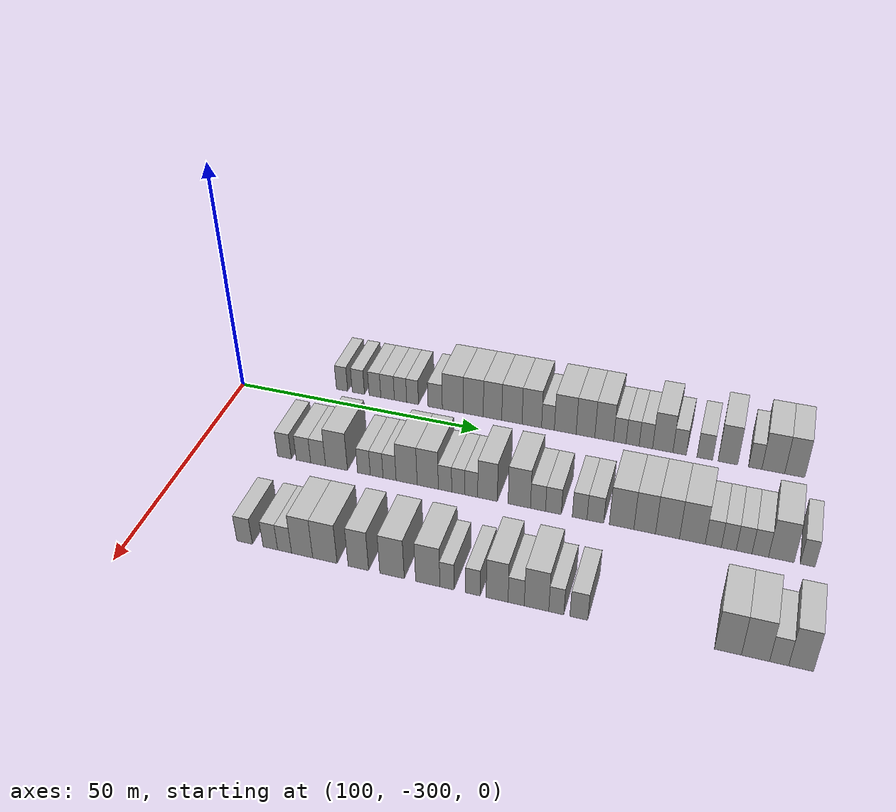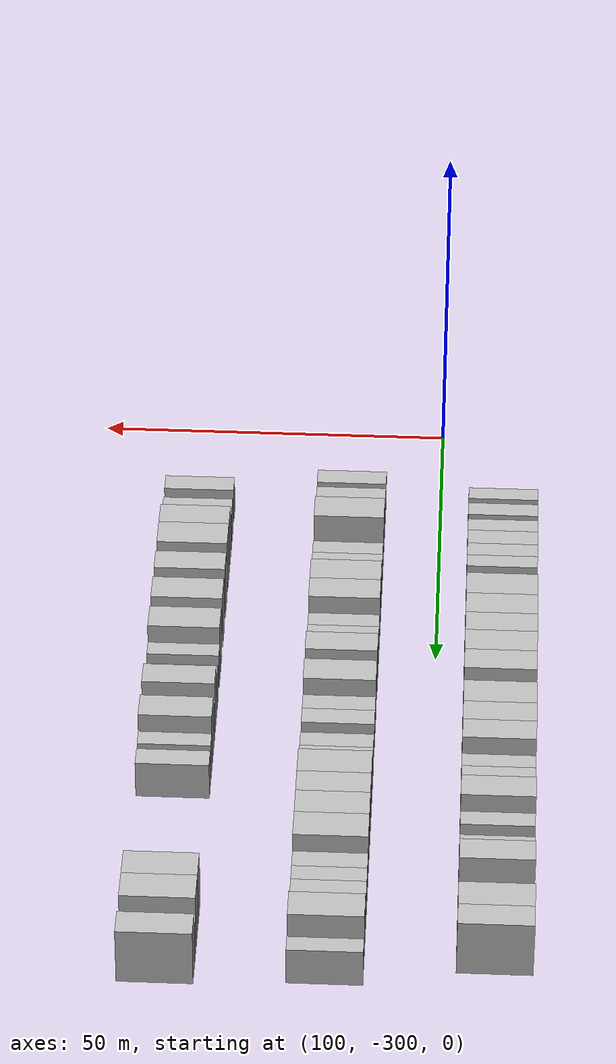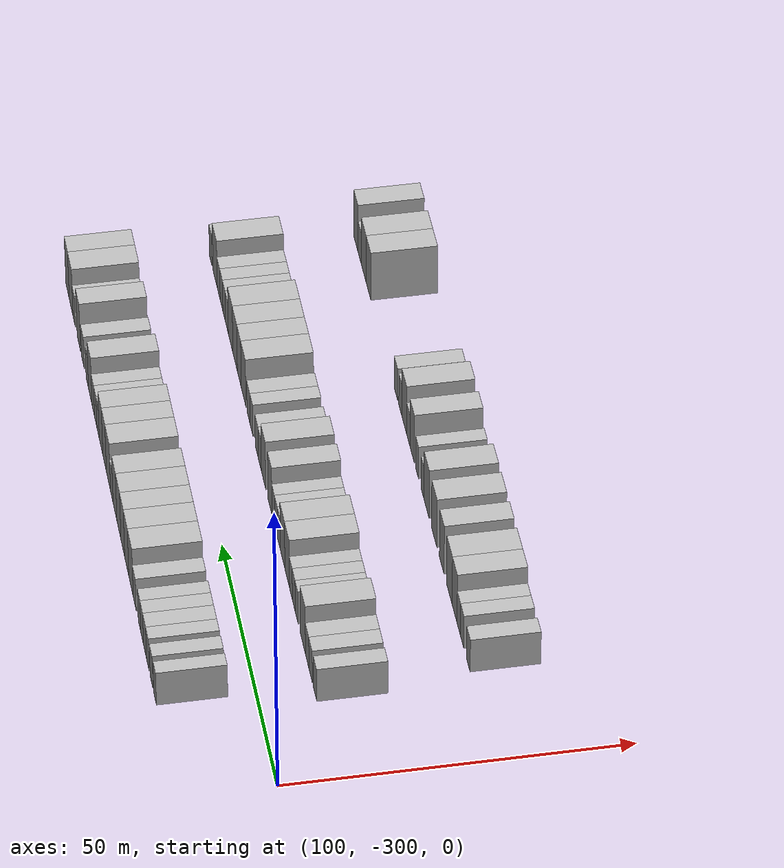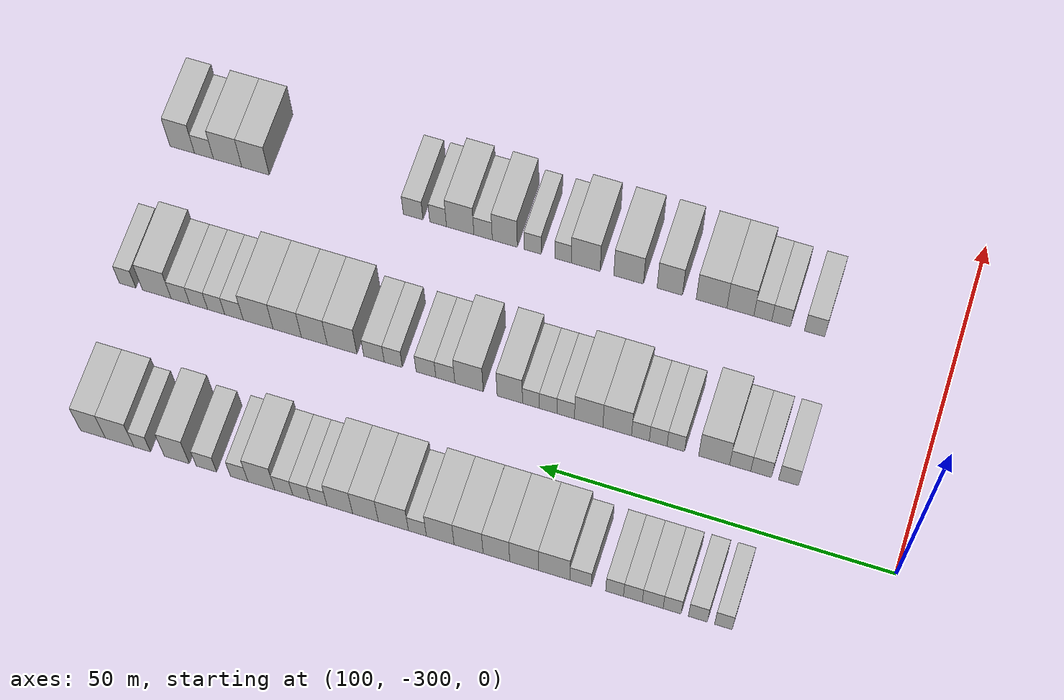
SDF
<sdf version="1.6">
 <world name="default">
  <model name="building_607">
   <static>1</static>
   <pose>91.0000 -279.9503 0 0.000000 0.000000 0.000000</pose>
   <link name="link">
    <pose>0 0 3.00 0 0 0</pose>
    <collision name="collision"><geometry><box><size>10.0000 2.4449 6.0000</size></box></geometry></collision>
    <visual name="visual">
     <cast_shadows>0</cast_shadows>
     <geometry><box><size>10.0000 2.4449 6.0000</size></box></geometry>
     <material>
      <script>
       <uri>model://HANNAS_wall/materials/scripts</uri>
       <uri>model://HANNAS_wall/materials/textures</uri>
       <name>vrc/HANNAS_wall</name>
      </script>
     </material>
    </visual>
   </link>
  </model>
  <model name="building_608">
   <static>1</static>
   <pose>91.0000 -276.4131 0 0.000000 0.000000 0.000000</pose>
   <link name="link">
    <pose>0 0 3.00 0 0 0</pose>
    <collision name="collision"><geometry><box><size>10.0000 2.6295 6.0000</size></box></geometry></collision>
    <visual name="visual">
     <cast_shadows>0</cast_shadows>
     <geometry><box><size>10.0000 2.6295 6.0000</size></box></geometry>
     <material>
      <script>
       <uri>model://HANNAS_wall/materials/scripts</uri>
       <uri>model://HANNAS_wall/materials/textures</uri>
       <name>vrc/HANNAS_wall</name>
      </script>
     </material>
    </visual>
   </link>
  </model>
  <model name="building_609">
   <static>1</static>
   <pose>91.0000 -272.8464 0 0.000000 0.000000 0.000000</pose>
   <link name="link">
    <pose>0 0 3.00 0 0 0</pose>
    <collision name="collision"><geometry><box><size>10.0000 2.5037 6.0000</size></box></geometry></collision>
    <visual name="visual">
     <cast_shadows>0</cast_shadows>
     <geometry><box><size>10.0000 2.5037 6.0000</size></box></geometry>
     <material>
      <script>
       <uri>model://HANNAS_wall/materials/scripts</uri>
       <uri>model://HANNAS_wall/materials/textures</uri>
       <name>vrc/HANNAS_wall</name>
      </script>
     </material>
    </visual>
   </link>
  </model>
  <model name="building_610">
   <static>1</static>
   <pose>91.0000 -270.1449 0 0.000000 0.000000 0.000000</pose>
   <link name="link">
    <pose>0 0 3.00 0 0 0</pose>
    <collision name="collision"><geometry><box><size>10.0000 2.8994 6.0000</size></box></geometry></collision>
    <visual name="visual">
     <cast_shadows>0</cast_shadows>
     <geometry><box><size>10.0000 2.8994 6.0000</size></box></geometry>
     <material>
      <script>
       <uri>model://HANNAS_wall/materials/scripts</uri>
       <uri>model://HANNAS_wall/materials/textures</uri>
       <name>vrc/HANNAS_wall</name>
      </script>
     </material>
    </visual>
   </link>
  </model>
  <model name="building_611">
   <static>1</static>
   <pose>91.0000 -267.3879 0 0.000000 0.000000 0.000000</pose>
   <link name="link">
    <pose>0 0 3.00 0 0 0</pose>
    <collision name="collision"><geometry><box><size>10.0000 2.6146 6.0000</size></box></geometry></collision>
    <visual name="visual">
     <cast_shadows>0</cast_shadows>
     <geometry><box><size>10.0000 2.6146 6.0000</size></box></geometry>
     <material>
      <script>
       <uri>model://HANNAS_wall/materials/scripts</uri>
       <uri>model://HANNAS_wall/materials/textures</uri>
       <name>vrc/HANNAS_wall</name>
      </script>
     </material>
    </visual>
   </link>
  </model>
  <model name="building_612">
   <static>1</static>
   <pose>91.0000 -264.8362 0 0.000000 0.000000 0.000000</pose>
   <link name="link">
    <pose>0 0 3.00 0 0 0</pose>
    <collision name="collision"><geometry><box><size>10.0000 2.4888 6.0000</size></box></geometry></collision>
    <visual name="visual">
     <cast_shadows>0</cast_shadows>
     <geometry><box><size>10.0000 2.4888 6.0000</size></box></geometry>
     <material>
      <script>
       <uri>model://HANNAS_wall/materials/scripts</uri>
       <uri>model://HANNAS_wall/materials/textures</uri>
       <name>vrc/HANNAS_wall</name>
      </script>
     </material>
    </visual>
   </link>
  </model>
  <model name="building_613">
   <static>1</static>
   <pose>91.0000 -260.0972 0 0.000000 0.000000 0.000000</pose>
   <link name="link">
    <pose>0 0 3.00 0 0 0</pose>
    <collision name="collision"><geometry><box><size>10.0000 2.9893 6.0000</size></box></geometry></collision>
    <visual name="visual">
     <cast_shadows>0</cast_shadows>
     <geometry><box><size>10.0000 2.9893 6.0000</size></box></geometry>
     <material>
      <script>
       <uri>model://HANNAS_wall/materials/scripts</uri>
       <uri>model://HANNAS_wall/materials/textures</uri>
       <name>vrc/HANNAS_wall</name>
      </script>
     </material>
    </visual>
   </link>
  </model>
  <model name="building_614">
   <static>1</static>
   <pose>91.0000 -256.4033 0 0.000000 0.000000 0.000000</pose>
   <link name="link">
    <pose>0 0 4.50 0 0 0</pose>
    <collision name="collision"><geometry><box><size>10.0000 4.3985 9.0000</size></box></geometry></collision>
    <visual name="visual">
     <cast_shadows>0</cast_shadows>
     <geometry><box><size>10.0000 4.3985 9.0000</size></box></geometry>
     <material>
      <script>
       <uri>model://HANNAS_wall/materials/scripts</uri>
       <uri>model://HANNAS_wall/materials/textures</uri>
       <name>vrc/HANNAS_wall</name>
      </script>
     </material>
    </visual>
   </link>
  </model>
  <model name="building_615">
   <static>1</static>
   <pose>91.0000 -252.1648 0 0.000000 0.000000 0.000000</pose>
   <link name="link">
    <pose>0 0 4.50 0 0 0</pose>
    <collision name="collision"><geometry><box><size>10.0000 4.0785 9.0000</size></box></geometry></collision>
    <visual name="visual">
     <cast_shadows>0</cast_shadows>
     <geometry><box><size>10.0000 4.0785 9.0000</size></box></geometry>
     <material>
      <script>
       <uri>model://HANNAS_wall/materials/scripts</uri>
       <uri>model://HANNAS_wall/materials/textures</uri>
       <name>vrc/HANNAS_wall</name>
      </script>
     </material>
    </visual>
   </link>
  </model>
  <model name="building_616">
   <static>1</static>
   <pose>91.0000 -248.2502 0 0.000000 0.000000 0.000000</pose>
   <link name="link">
    <pose>0 0 4.50 0 0 0</pose>
    <collision name="collision"><geometry><box><size>10.0000 3.7507 9.0000</size></box></geometry></collision>
    <visual name="visual">
     <cast_shadows>0</cast_shadows>
     <geometry><box><size>10.0000 3.7507 9.0000</size></box></geometry>
     <material>
      <script>
       <uri>model://HANNAS_wall/materials/scripts</uri>
       <uri>model://HANNAS_wall/materials/textures</uri>
       <name>vrc/HANNAS_wall</name>
      </script>
     </material>
    </visual>
   </link>
  </model>
  <model name="building_617">
   <static>1</static>
   <pose>91.0000 -244.3255 0 0.000000 0.000000 0.000000</pose>
   <link name="link">
    <pose>0 0 4.50 0 0 0</pose>
    <collision name="collision"><geometry><box><size>10.0000 4.0986 9.0000</size></box></geometry></collision>
    <visual name="visual">
     <cast_shadows>0</cast_shadows>
     <geometry><box><size>10.0000 4.0986 9.0000</size></box></geometry>
     <material>
      <script>
       <uri>model://HANNAS_wall/materials/scripts</uri>
       <uri>model://HANNAS_wall/materials/textures</uri>
       <name>vrc/HANNAS_wall</name>
      </script>
     </material>
    </visual>
   </link>
  </model>
  <model name="building_618">
   <static>1</static>
   <pose>91.0000 -240.3170 0 0.000000 0.000000 0.000000</pose>
   <link name="link">
    <pose>0 0 4.50 0 0 0</pose>
    <collision name="collision"><geometry><box><size>10.0000 3.9185 9.0000</size></box></geometry></collision>
    <visual name="visual">
     <cast_shadows>0</cast_shadows>
     <geometry><box><size>10.0000 3.9185 9.0000</size></box></geometry>
     <material>
      <script>
       <uri>model://HANNAS_wall/materials/scripts</uri>
       <uri>model://HANNAS_wall/materials/textures</uri>
       <name>vrc/HANNAS_wall</name>
      </script>
     </material>
    </visual>
   </link>
  </model>
  <model name="building_619">
   <static>1</static>
   <pose>91.0000 -237.0814 0 0.000000 0.000000 0.000000</pose>
   <link name="link">
    <pose>0 0 3.00 0 0 0</pose>
    <collision name="collision"><geometry><box><size>10.0000 2.5527 6.0000</size></box></geometry></collision>
    <visual name="visual">
     <cast_shadows>0</cast_shadows>
     <geometry><box><size>10.0000 2.5527 6.0000</size></box></geometry>
     <material>
      <script>
       <uri>model://HANNAS_wall/materials/scripts</uri>
       <uri>model://HANNAS_wall/materials/textures</uri>
       <name>vrc/HANNAS_wall</name>
      </script>
     </material>
    </visual>
   </link>
  </model>
  <model name="building_620">
   <static>1</static>
   <pose>91.0000 -233.6592 0 0.000000 0.000000 0.000000</pose>
   <link name="link">
    <pose>0 0 4.50 0 0 0</pose>
    <collision name="collision"><geometry><box><size>10.0000 4.2918 9.0000</size></box></geometry></collision>
    <visual name="visual">
     <cast_shadows>0</cast_shadows>
     <geometry><box><size>10.0000 4.2918 9.0000</size></box></geometry>
     <material>
      <script>
       <uri>model://HANNAS_wall/materials/scripts</uri>
       <uri>model://HANNAS_wall/materials/textures</uri>
       <name>vrc/HANNAS_wall</name>
      </script>
     </material>
    </visual>
   </link>
  </model>
  <model name="building_621">
   <static>1</static>
   <pose>91.0000 -229.6779 0 0.000000 0.000000 0.000000</pose>
   <link name="link">
    <pose>0 0 4.50 0 0 0</pose>
    <collision name="collision"><geometry><box><size>10.0000 3.6708 9.0000</size></box></geometry></collision>
    <visual name="visual">
     <cast_shadows>0</cast_shadows>
     <geometry><box><size>10.0000 3.6708 9.0000</size></box></geometry>
     <material>
      <script>
       <uri>model://HANNAS_wall/materials/scripts</uri>
       <uri>model://HANNAS_wall/materials/textures</uri>
       <name>vrc/HANNAS_wall</name>
      </script>
     </material>
    </visual>
   </link>
  </model>
  <model name="building_622">
   <static>1</static>
   <pose>91.0000 -226.0077 0 0.000000 0.000000 0.000000</pose>
   <link name="link">
    <pose>0 0 4.50 0 0 0</pose>
    <collision name="collision"><geometry><box><size>10.0000 3.6696 9.0000</size></box></geometry></collision>
    <visual name="visual">
     <cast_shadows>0</cast_shadows>
     <geometry><box><size>10.0000 3.6696 9.0000</size></box></geometry>
     <material>
      <script>
       <uri>model://HANNAS_wall/materials/scripts</uri>
       <uri>model://HANNAS_wall/materials/textures</uri>
       <name>vrc/HANNAS_wall</name>
      </script>
     </material>
    </visual>
   </link>
  </model>
  <model name="building_623">
   <static>1</static>
   <pose>91.0000 -222.9722 0 0.000000 0.000000 0.000000</pose>
   <link name="link">
    <pose>0 0 3.00 0 0 0</pose>
    <collision name="collision"><geometry><box><size>10.0000 2.4015 6.0000</size></box></geometry></collision>
    <visual name="visual">
     <cast_shadows>0</cast_shadows>
     <geometry><box><size>10.0000 2.4015 6.0000</size></box></geometry>
     <material>
      <script>
       <uri>model://HANNAS_wall/materials/scripts</uri>
       <uri>model://HANNAS_wall/materials/textures</uri>
       <name>vrc/HANNAS_wall</name>
      </script>
     </material>
    </visual>
   </link>
  </model>
  <model name="building_624">
   <static>1</static>
   <pose>91.0000 -220.5133 0 0.000000 0.000000 0.000000</pose>
   <link name="link">
    <pose>0 0 3.00 0 0 0</pose>
    <collision name="collision"><geometry><box><size>10.0000 2.5162 6.0000</size></box></geometry></collision>
    <visual name="visual">
     <cast_shadows>0</cast_shadows>
     <geometry><box><size>10.0000 2.5162 6.0000</size></box></geometry>
     <material>
      <script>
       <uri>model://HANNAS_wall/materials/scripts</uri>
       <uri>model://HANNAS_wall/materials/textures</uri>
       <name>vrc/HANNAS_wall</name>
      </script>
     </material>
    </visual>
   </link>
  </model>
  <model name="building_625">
   <static>1</static>
   <pose>91.0000 -217.9623 0 0.000000 0.000000 0.000000</pose>
   <link name="link">
    <pose>0 0 3.00 0 0 0</pose>
    <collision name="collision"><geometry><box><size>10.0000 2.5860 6.0000</size></box></geometry></collision>
    <visual name="visual">
     <cast_shadows>0</cast_shadows>
     <geometry><box><size>10.0000 2.5860 6.0000</size></box></geometry>
     <material>
      <script>
       <uri>model://HANNAS_wall/materials/scripts</uri>
       <uri>model://HANNAS_wall/materials/textures</uri>
       <name>vrc/HANNAS_wall</name>
      </script>
     </material>
    </visual>
   </link>
  </model>
  <model name="building_626">
   <static>1</static>
   <pose>91.0000 -214.7382 0 0.000000 0.000000 0.000000</pose>
   <link name="link">
    <pose>0 0 4.50 0 0 0</pose>
    <collision name="collision"><geometry><box><size>10.0000 3.8621 9.0000</size></box></geometry></collision>
    <visual name="visual">
     <cast_shadows>0</cast_shadows>
     <geometry><box><size>10.0000 3.8621 9.0000</size></box></geometry>
     <material>
      <script>
       <uri>model://HANNAS_wall/materials/scripts</uri>
       <uri>model://HANNAS_wall/materials/textures</uri>
       <name>vrc/HANNAS_wall</name>
      </script>
     </material>
    </visual>
   </link>
  </model>
  <model name="building_627">
   <static>1</static>
   <pose>91.0000 -211.5378 0 0.000000 0.000000 0.000000</pose>
   <link name="link">
    <pose>0 0 3.00 0 0 0</pose>
    <collision name="collision"><geometry><box><size>10.0000 2.5387 6.0000</size></box></geometry></collision>
    <visual name="visual">
     <cast_shadows>0</cast_shadows>
     <geometry><box><size>10.0000 2.5387 6.0000</size></box></geometry>
     <material>
      <script>
       <uri>model://HANNAS_wall/materials/scripts</uri>
       <uri>model://HANNAS_wall/materials/textures</uri>
       <name>vrc/HANNAS_wall</name>
      </script>
     </material>
    </visual>
   </link>
  </model>
  <model name="building_628">
   <static>1</static>
   <pose>91.0000 -206.7907 0 0.000000 0.000000 0.000000</pose>
   <link name="link">
    <pose>0 0 3.00 0 0 0</pose>
    <collision name="collision"><geometry><box><size>10.0000 2.9554 6.0000</size></box></geometry></collision>
    <visual name="visual">
     <cast_shadows>0</cast_shadows>
     <geometry><box><size>10.0000 2.9554 6.0000</size></box></geometry>
     <material>
      <script>
       <uri>model://HANNAS_wall/materials/scripts</uri>
       <uri>model://HANNAS_wall/materials/textures</uri>
       <name>vrc/HANNAS_wall</name>
      </script>
     </material>
    </visual>
   </link>
  </model>
  <model name="building_629">
   <static>1</static>
   <pose>91.0000 -202.4973 0 0.000000 0.000000 0.000000</pose>
   <link name="link">
    <pose>0 0 4.50 0 0 0</pose>
    <collision name="collision"><geometry><box><size>10.0000 3.6314 9.0000</size></box></geometry></collision>
    <visual name="visual">
     <cast_shadows>0</cast_shadows>
     <geometry><box><size>10.0000 3.6314 9.0000</size></box></geometry>
     <material>
      <script>
       <uri>model://HANNAS_wall/materials/scripts</uri>
       <uri>model://HANNAS_wall/materials/textures</uri>
       <name>vrc/HANNAS_wall</name>
      </script>
     </material>
    </visual>
   </link>
  </model>
  <model name="building_630">
   <static>1</static>
   <pose>91.0000 -197.4672 0 0.000000 0.000000 0.000000</pose>
   <link name="link">
    <pose>0 0 3.00 0 0 0</pose>
    <collision name="collision"><geometry><box><size>10.0000 2.4287 6.0000</size></box></geometry></collision>
    <visual name="visual">
     <cast_shadows>0</cast_shadows>
     <geometry><box><size>10.0000 2.4287 6.0000</size></box></geometry>
     <material>
      <script>
       <uri>model://HANNAS_wall/materials/scripts</uri>
       <uri>model://HANNAS_wall/materials/textures</uri>
       <name>vrc/HANNAS_wall</name>
      </script>
     </material>
    </visual>
   </link>
  </model>
  <model name="building_631">
   <static>1</static>
   <pose>91.0000 -194.1700 0 0.000000 0.000000 0.000000</pose>
   <link name="link">
    <pose>0 0 4.50 0 0 0</pose>
    <collision name="collision"><geometry><box><size>10.0000 4.1658 9.0000</size></box></geometry></collision>
    <visual name="visual">
     <cast_shadows>0</cast_shadows>
     <geometry><box><size>10.0000 4.1658 9.0000</size></box></geometry>
     <material>
      <script>
       <uri>model://HANNAS_wall/materials/scripts</uri>
       <uri>model://HANNAS_wall/materials/textures</uri>
       <name>vrc/HANNAS_wall</name>
      </script>
     </material>
    </visual>
   </link>
  </model>
  <model name="building_632">
   <static>1</static>
   <pose>91.0000 -190.2666 0 0.000000 0.000000 0.000000</pose>
   <link name="link">
    <pose>0 0 4.50 0 0 0</pose>
    <collision name="collision"><geometry><box><size>10.0000 3.6411 9.0000</size></box></geometry></collision>
    <visual name="visual">
     <cast_shadows>0</cast_shadows>
     <geometry><box><size>10.0000 3.6411 9.0000</size></box></geometry>
     <material>
      <script>
       <uri>model://HANNAS_wall/materials/scripts</uri>
       <uri>model://HANNAS_wall/materials/textures</uri>
       <name>vrc/HANNAS_wall</name>
      </script>
     </material>
    </visual>
   </link>
  </model>
  <model name="building_811">
   <static>1</static>
   <pose>113.0000 -282.7919 0 0.000000 0.000000 0.000000</pose>
   <link name="link">
    <pose>0 0 3.00 0 0 0</pose>
    <collision name="collision"><geometry><box><size>10.0000 2.8176 6.0000</size></box></geometry></collision>
    <visual name="visual">
     <cast_shadows>0</cast_shadows>
     <geometry><box><size>10.0000 2.8176 6.0000</size></box></geometry>
     <material>
      <script>
       <uri>model://HANNAS_wall/materials/scripts</uri>
       <uri>model://HANNAS_wall/materials/textures</uri>
       <name>vrc/HANNAS_wall</name>
      </script>
     </material>
    </visual>
   </link>
  </model>
  <model name="building_812">
   <static>1</static>
   <pose>113.0000 -278.9204 0 0.000000 0.000000 0.000000</pose>
   <link name="link">
    <pose>0 0 3.00 0 0 0</pose>
    <collision name="collision"><geometry><box><size>10.0000 2.9254 6.0000</size></box></geometry></collision>
    <visual name="visual">
     <cast_shadows>0</cast_shadows>
     <geometry><box><size>10.0000 2.9254 6.0000</size></box></geometry>
     <material>
      <script>
       <uri>model://HANNAS_wall/materials/scripts</uri>
       <uri>model://HANNAS_wall/materials/textures</uri>
       <name>vrc/HANNAS_wall</name>
      </script>
     </material>
    </visual>
   </link>
  </model>
  <model name="building_813">
   <static>1</static>
   <pose>113.0000 -275.9666 0 0.000000 0.000000 0.000000</pose>
   <link name="link">
    <pose>0 0 3.00 0 0 0</pose>
    <collision name="collision"><geometry><box><size>10.0000 2.9822 6.0000</size></box></geometry></collision>
    <visual name="visual">
     <cast_shadows>0</cast_shadows>
     <geometry><box><size>10.0000 2.9822 6.0000</size></box></geometry>
     <material>
      <script>
       <uri>model://HANNAS_wall/materials/scripts</uri>
       <uri>model://HANNAS_wall/materials/textures</uri>
       <name>vrc/HANNAS_wall</name>
      </script>
     </material>
    </visual>
   </link>
  </model>
  <model name="building_814">
   <static>1</static>
   <pose>113.0000 -272.2778 0 0.000000 0.000000 0.000000</pose>
   <link name="link">
    <pose>0 0 4.50 0 0 0</pose>
    <collision name="collision"><geometry><box><size>10.0000 4.3955 9.0000</size></box></geometry></collision>
    <visual name="visual">
     <cast_shadows>0</cast_shadows>
     <geometry><box><size>10.0000 4.3955 9.0000</size></box></geometry>
     <material>
      <script>
       <uri>model://HANNAS_wall/materials/scripts</uri>
       <uri>model://HANNAS_wall/materials/textures</uri>
       <name>vrc/HANNAS_wall</name>
      </script>
     </material>
    </visual>
   </link>
  </model>
  <model name="building_815">
   <static>1</static>
   <pose>113.0000 -266.8245 0 0.000000 0.000000 0.000000</pose>
   <link name="link">
    <pose>0 0 3.00 0 0 0</pose>
    <collision name="collision"><geometry><box><size>10.0000 2.5110 6.0000</size></box></geometry></collision>
    <visual name="visual">
     <cast_shadows>0</cast_shadows>
     <geometry><box><size>10.0000 2.5110 6.0000</size></box></geometry>
     <material>
      <script>
       <uri>model://HANNAS_wall/materials/scripts</uri>
       <uri>model://HANNAS_wall/materials/textures</uri>
       <name>vrc/HANNAS_wall</name>
      </script>
     </material>
    </visual>
   </link>
  </model>
  <model name="building_816">
   <static>1</static>
   <pose>113.0000 -264.3159 0 0.000000 0.000000 0.000000</pose>
   <link name="link">
    <pose>0 0 3.00 0 0 0</pose>
    <collision name="collision"><geometry><box><size>10.0000 2.5062 6.0000</size></box></geometry></collision>
    <visual name="visual">
     <cast_shadows>0</cast_shadows>
     <geometry><box><size>10.0000 2.5062 6.0000</size></box></geometry>
     <material>
      <script>
       <uri>model://HANNAS_wall/materials/scripts</uri>
       <uri>model://HANNAS_wall/materials/textures</uri>
       <name>vrc/HANNAS_wall</name>
      </script>
     </material>
    </visual>
   </link>
  </model>
  <model name="building_817">
   <static>1</static>
   <pose>113.0000 -261.7914 0 0.000000 0.000000 0.000000</pose>
   <link name="link">
    <pose>0 0 3.00 0 0 0</pose>
    <collision name="collision"><geometry><box><size>10.0000 2.5427 6.0000</size></box></geometry></collision>
    <visual name="visual">
     <cast_shadows>0</cast_shadows>
     <geometry><box><size>10.0000 2.5427 6.0000</size></box></geometry>
     <material>
      <script>
       <uri>model://HANNAS_wall/materials/scripts</uri>
       <uri>model://HANNAS_wall/materials/textures</uri>
       <name>vrc/HANNAS_wall</name>
      </script>
     </material>
    </visual>
   </link>
  </model>
  <model name="building_818">
   <static>1</static>
   <pose>113.0000 -258.4742 0 0.000000 0.000000 0.000000</pose>
   <link name="link">
    <pose>0 0 4.50 0 0 0</pose>
    <collision name="collision"><geometry><box><size>10.0000 4.0918 9.0000</size></box></geometry></collision>
    <visual name="visual">
     <cast_shadows>0</cast_shadows>
     <geometry><box><size>10.0000 4.0918 9.0000</size></box></geometry>
     <material>
      <script>
       <uri>model://HANNAS_wall/materials/scripts</uri>
       <uri>model://HANNAS_wall/materials/textures</uri>
       <name>vrc/HANNAS_wall</name>
      </script>
     </material>
    </visual>
   </link>
  </model>
  <model name="building_819">
   <static>1</static>
   <pose>113.0000 -254.3950 0 0.000000 0.000000 0.000000</pose>
   <link name="link">
    <pose>0 0 4.50 0 0 0</pose>
    <collision name="collision"><geometry><box><size>10.0000 4.0666 9.0000</size></box></geometry></collision>
    <visual name="visual">
     <cast_shadows>0</cast_shadows>
     <geometry><box><size>10.0000 4.0666 9.0000</size></box></geometry>
     <material>
      <script>
       <uri>model://HANNAS_wall/materials/scripts</uri>
       <uri>model://HANNAS_wall/materials/textures</uri>
       <name>vrc/HANNAS_wall</name>
      </script>
     </material>
    </visual>
   </link>
  </model>
  <model name="building_820">
   <static>1</static>
   <pose>113.0000 -251.0864 0 0.000000 0.000000 0.000000</pose>
   <link name="link">
    <pose>0 0 3.00 0 0 0</pose>
    <collision name="collision"><geometry><box><size>10.0000 2.5504 6.0000</size></box></geometry></collision>
    <visual name="visual">
     <cast_shadows>0</cast_shadows>
     <geometry><box><size>10.0000 2.5504 6.0000</size></box></geometry>
     <material>
      <script>
       <uri>model://HANNAS_wall/materials/scripts</uri>
       <uri>model://HANNAS_wall/materials/textures</uri>
       <name>vrc/HANNAS_wall</name>
      </script>
     </material>
    </visual>
   </link>
  </model>
  <model name="building_821">
   <static>1</static>
   <pose>113.0000 -248.5660 0 0.000000 0.000000 0.000000</pose>
   <link name="link">
    <pose>0 0 3.00 0 0 0</pose>
    <collision name="collision"><geometry><box><size>10.0000 2.4904 6.0000</size></box></geometry></collision>
    <visual name="visual">
     <cast_shadows>0</cast_shadows>
     <geometry><box><size>10.0000 2.4904 6.0000</size></box></geometry>
     <material>
      <script>
       <uri>model://HANNAS_wall/materials/scripts</uri>
       <uri>model://HANNAS_wall/materials/textures</uri>
       <name>vrc/HANNAS_wall</name>
      </script>
     </material>
    </visual>
   </link>
  </model>
  <model name="building_822">
   <static>1</static>
   <pose>113.0000 -246.1030 0 0.000000 0.000000 0.000000</pose>
   <link name="link">
    <pose>0 0 3.00 0 0 0</pose>
    <collision name="collision"><geometry><box><size>10.0000 2.4356 6.0000</size></box></geometry></collision>
    <visual name="visual">
     <cast_shadows>0</cast_shadows>
     <geometry><box><size>10.0000 2.4356 6.0000</size></box></geometry>
     <material>
      <script>
       <uri>model://HANNAS_wall/materials/scripts</uri>
       <uri>model://HANNAS_wall/materials/textures</uri>
       <name>vrc/HANNAS_wall</name>
      </script>
     </material>
    </visual>
   </link>
  </model>
  <model name="building_823">
   <static>1</static>
   <pose>113.0000 -243.0482 0 0.000000 0.000000 0.000000</pose>
   <link name="link">
    <pose>0 0 4.50 0 0 0</pose>
    <collision name="collision"><geometry><box><size>10.0000 3.6739 9.0000</size></box></geometry></collision>
    <visual name="visual">
     <cast_shadows>0</cast_shadows>
     <geometry><box><size>10.0000 3.6739 9.0000</size></box></geometry>
     <material>
      <script>
       <uri>model://HANNAS_wall/materials/scripts</uri>
       <uri>model://HANNAS_wall/materials/textures</uri>
       <name>vrc/HANNAS_wall</name>
      </script>
     </material>
    </visual>
   </link>
  </model>
  <model name="building_824">
   <static>1</static>
   <pose>113.0000 -237.1501 0 0.000000 0.000000 0.000000</pose>
   <link name="link">
    <pose>0 0 4.50 0 0 0</pose>
    <collision name="collision"><geometry><box><size>10.0000 4.1223 9.0000</size></box></geometry></collision>
    <visual name="visual">
     <cast_shadows>0</cast_shadows>
     <geometry><box><size>10.0000 4.1223 9.0000</size></box></geometry>
     <material>
      <script>
       <uri>model://HANNAS_wall/materials/scripts</uri>
       <uri>model://HANNAS_wall/materials/textures</uri>
       <name>vrc/HANNAS_wall</name>
      </script>
     </material>
    </visual>
   </link>
  </model>
  <model name="building_825">
   <static>1</static>
   <pose>113.0000 -233.7059 0 0.000000 0.000000 0.000000</pose>
   <link name="link">
    <pose>0 0 3.00 0 0 0</pose>
    <collision name="collision"><geometry><box><size>10.0000 2.7661 6.0000</size></box></geometry></collision>
    <visual name="visual">
     <cast_shadows>0</cast_shadows>
     <geometry><box><size>10.0000 2.7661 6.0000</size></box></geometry>
     <material>
      <script>
       <uri>model://HANNAS_wall/materials/scripts</uri>
       <uri>model://HANNAS_wall/materials/textures</uri>
       <name>vrc/HANNAS_wall</name>
      </script>
     </material>
    </visual>
   </link>
  </model>
  <model name="building_826">
   <static>1</static>
   <pose>113.0000 -230.8869 0 0.000000 0.000000 0.000000</pose>
   <link name="link">
    <pose>0 0 3.00 0 0 0</pose>
    <collision name="collision"><geometry><box><size>10.0000 2.8720 6.0000</size></box></geometry></collision>
    <visual name="visual">
     <cast_shadows>0</cast_shadows>
     <geometry><box><size>10.0000 2.8720 6.0000</size></box></geometry>
     <material>
      <script>
       <uri>model://HANNAS_wall/materials/scripts</uri>
       <uri>model://HANNAS_wall/materials/textures</uri>
       <name>vrc/HANNAS_wall</name>
      </script>
     </material>
    </visual>
   </link>
  </model>
  <model name="building_827">
   <static>1</static>
   <pose>113.0000 -226.1274 0 0.000000 0.000000 0.000000</pose>
   <link name="link">
    <pose>0 0 3.00 0 0 0</pose>
    <collision name="collision"><geometry><box><size>10.0000 2.6470 6.0000</size></box></geometry></collision>
    <visual name="visual">
     <cast_shadows>0</cast_shadows>
     <geometry><box><size>10.0000 2.6470 6.0000</size></box></geometry>
     <material>
      <script>
       <uri>model://HANNAS_wall/materials/scripts</uri>
       <uri>model://HANNAS_wall/materials/textures</uri>
       <name>vrc/HANNAS_wall</name>
      </script>
     </material>
    </visual>
   </link>
  </model>
  <model name="building_828">
   <static>1</static>
   <pose>113.0000 -223.3099 0 0.000000 0.000000 0.000000</pose>
   <link name="link">
    <pose>0 0 3.00 0 0 0</pose>
    <collision name="collision"><geometry><box><size>10.0000 2.9880 6.0000</size></box></geometry></collision>
    <visual name="visual">
     <cast_shadows>0</cast_shadows>
     <geometry><box><size>10.0000 2.9880 6.0000</size></box></geometry>
     <material>
      <script>
       <uri>model://HANNAS_wall/materials/scripts</uri>
       <uri>model://HANNAS_wall/materials/textures</uri>
       <name>vrc/HANNAS_wall</name>
      </script>
     </material>
    </visual>
   </link>
  </model>
  <model name="building_829">
   <static>1</static>
   <pose>113.0000 -218.6381 0 0.000000 0.000000 0.000000</pose>
   <link name="link">
    <pose>0 0 4.50 0 0 0</pose>
    <collision name="collision"><geometry><box><size>10.0000 4.3557 9.0000</size></box></geometry></collision>
    <visual name="visual">
     <cast_shadows>0</cast_shadows>
     <geometry><box><size>10.0000 4.3557 9.0000</size></box></geometry>
     <material>
      <script>
       <uri>model://HANNAS_wall/materials/scripts</uri>
       <uri>model://HANNAS_wall/materials/textures</uri>
       <name>vrc/HANNAS_wall</name>
      </script>
     </material>
    </visual>
   </link>
  </model>
  <model name="building_830">
   <static>1</static>
   <pose>113.0000 -214.5606 0 0.000000 0.000000 0.000000</pose>
   <link name="link">
    <pose>0 0 4.50 0 0 0</pose>
    <collision name="collision"><geometry><box><size>10.0000 3.7992 9.0000</size></box></geometry></collision>
    <visual name="visual">
     <cast_shadows>0</cast_shadows>
     <geometry><box><size>10.0000 3.7992 9.0000</size></box></geometry>
     <material>
      <script>
       <uri>model://HANNAS_wall/materials/scripts</uri>
       <uri>model://HANNAS_wall/materials/textures</uri>
       <name>vrc/HANNAS_wall</name>
      </script>
     </material>
    </visual>
   </link>
  </model>
  <model name="building_831">
   <static>1</static>
   <pose>113.0000 -210.5715 0 0.000000 0.000000 0.000000</pose>
   <link name="link">
    <pose>0 0 4.50 0 0 0</pose>
    <collision name="collision"><geometry><box><size>10.0000 4.1790 9.0000</size></box></geometry></collision>
    <visual name="visual">
     <cast_shadows>0</cast_shadows>
     <geometry><box><size>10.0000 4.1790 9.0000</size></box></geometry>
     <material>
      <script>
       <uri>model://HANNAS_wall/materials/scripts</uri>
       <uri>model://HANNAS_wall/materials/textures</uri>
       <name>vrc/HANNAS_wall</name>
      </script>
     </material>
    </visual>
   </link>
  </model>
  <model name="building_832">
   <static>1</static>
   <pose>113.0000 -206.2715 0 0.000000 0.000000 0.000000</pose>
   <link name="link">
    <pose>0 0 4.50 0 0 0</pose>
    <collision name="collision"><geometry><box><size>10.0000 4.4211 9.0000</size></box></geometry></collision>
    <visual name="visual">
     <cast_shadows>0</cast_shadows>
     <geometry><box><size>10.0000 4.4211 9.0000</size></box></geometry>
     <material>
      <script>
       <uri>model://HANNAS_wall/materials/scripts</uri>
       <uri>model://HANNAS_wall/materials/textures</uri>
       <name>vrc/HANNAS_wall</name>
      </script>
     </material>
    </visual>
   </link>
  </model>
  <model name="building_833">
   <static>1</static>
   <pose>113.0000 -202.6789 0 0.000000 0.000000 0.000000</pose>
   <link name="link">
    <pose>0 0 3.00 0 0 0</pose>
    <collision name="collision"><geometry><box><size>10.0000 2.7639 6.0000</size></box></geometry></collision>
    <visual name="visual">
     <cast_shadows>0</cast_shadows>
     <geometry><box><size>10.0000 2.7639 6.0000</size></box></geometry>
     <material>
      <script>
       <uri>model://HANNAS_wall/materials/scripts</uri>
       <uri>model://HANNAS_wall/materials/textures</uri>
       <name>vrc/HANNAS_wall</name>
      </script>
     </material>
    </visual>
   </link>
  </model>
  <model name="building_834">
   <static>1</static>
   <pose>113.0000 -200.0368 0 0.000000 0.000000 0.000000</pose>
   <link name="link">
    <pose>0 0 3.00 0 0 0</pose>
    <collision name="collision"><geometry><box><size>10.0000 2.5203 6.0000</size></box></geometry></collision>
    <visual name="visual">
     <cast_shadows>0</cast_shadows>
     <geometry><box><size>10.0000 2.5203 6.0000</size></box></geometry>
     <material>
      <script>
       <uri>model://HANNAS_wall/materials/scripts</uri>
       <uri>model://HANNAS_wall/materials/textures</uri>
       <name>vrc/HANNAS_wall</name>
      </script>
     </material>
    </visual>
   </link>
  </model>
  <model name="building_835">
   <static>1</static>
   <pose>113.0000 -197.4478 0 0.000000 0.000000 0.000000</pose>
   <link name="link">
    <pose>0 0 3.00 0 0 0</pose>
    <collision name="collision"><geometry><box><size>10.0000 2.6577 6.0000</size></box></geometry></collision>
    <visual name="visual">
     <cast_shadows>0</cast_shadows>
     <geometry><box><size>10.0000 2.6577 6.0000</size></box></geometry>
     <material>
      <script>
       <uri>model://HANNAS_wall/materials/scripts</uri>
       <uri>model://HANNAS_wall/materials/textures</uri>
       <name>vrc/HANNAS_wall</name>
      </script>
     </material>
    </visual>
   </link>
  </model>
  <model name="building_836">
   <static>1</static>
   <pose>113.0000 -194.7319 0 0.000000 0.000000 0.000000</pose>
   <link name="link">
    <pose>0 0 3.00 0 0 0</pose>
    <collision name="collision"><geometry><box><size>10.0000 2.7742 6.0000</size></box></geometry></collision>
    <visual name="visual">
     <cast_shadows>0</cast_shadows>
     <geometry><box><size>10.0000 2.7742 6.0000</size></box></geometry>
     <material>
      <script>
       <uri>model://HANNAS_wall/materials/scripts</uri>
       <uri>model://HANNAS_wall/materials/textures</uri>
       <name>vrc/HANNAS_wall</name>
      </script>
     </material>
    </visual>
   </link>
  </model>
  <model name="building_837">
   <static>1</static>
   <pose>113.0000 -191.2103 0 0.000000 0.000000 0.000000</pose>
   <link name="link">
    <pose>0 0 4.50 0 0 0</pose>
    <collision name="collision"><geometry><box><size>10.0000 4.2690 9.0000</size></box></geometry></collision>
    <visual name="visual">
     <cast_shadows>0</cast_shadows>
     <geometry><box><size>10.0000 4.2690 9.0000</size></box></geometry>
     <material>
      <script>
       <uri>model://HANNAS_wall/materials/scripts</uri>
       <uri>model://HANNAS_wall/materials/textures</uri>
       <name>vrc/HANNAS_wall</name>
      </script>
     </material>
    </visual>
   </link>
  </model>
  <model name="building_838">
   <static>1</static>
   <pose>113.0000 -186.8415 0 0.000000 0.000000 0.000000</pose>
   <link name="link">
    <pose>0 0 3.00 0 0 0</pose>
    <collision name="collision"><geometry><box><size>10.0000 2.4687 6.0000</size></box></geometry></collision>
    <visual name="visual">
     <cast_shadows>0</cast_shadows>
     <geometry><box><size>10.0000 2.4687 6.0000</size></box></geometry>
     <material>
      <script>
       <uri>model://HANNAS_wall/materials/scripts</uri>
       <uri>model://HANNAS_wall/materials/textures</uri>
       <name>vrc/HANNAS_wall</name>
      </script>
     </material>
    </visual>
   </link>
  </model>
  <model name="building_1007">
   <static>1</static>
   <pose>135.0000 -280.4107 0 0.000000 0.000000 0.000000</pose>
   <link name="link">
    <pose>0 0 3.00 0 0 0</pose>
    <collision name="collision"><geometry><box><size>10.0000 2.9422 6.0000</size></box></geometry></collision>
    <visual name="visual">
     <cast_shadows>0</cast_shadows>
     <geometry><box><size>10.0000 2.9422 6.0000</size></box></geometry>
     <material>
      <script>
       <uri>model://HANNAS_wall/materials/scripts</uri>
       <uri>model://HANNAS_wall/materials/textures</uri>
       <name>vrc/HANNAS_wall</name>
      </script>
     </material>
    </visual>
   </link>
  </model>
  <model name="building_1008">
   <static>1</static>
   <pose>135.0000 -275.5806 0 0.000000 0.000000 0.000000</pose>
   <link name="link">
    <pose>0 0 3.00 0 0 0</pose>
    <collision name="collision"><geometry><box><size>10.0000 2.7180 6.0000</size></box></geometry></collision>
    <visual name="visual">
     <cast_shadows>0</cast_shadows>
     <geometry><box><size>10.0000 2.7180 6.0000</size></box></geometry>
     <material>
      <script>
       <uri>model://HANNAS_wall/materials/scripts</uri>
       <uri>model://HANNAS_wall/materials/textures</uri>
       <name>vrc/HANNAS_wall</name>
      </script>
     </material>
    </visual>
   </link>
  </model>
  <model name="building_1009">
   <static>1</static>
   <pose>135.0000 -272.9299 0 0.000000 0.000000 0.000000</pose>
   <link name="link">
    <pose>0 0 3.00 0 0 0</pose>
    <collision name="collision"><geometry><box><size>10.0000 2.5833 6.0000</size></box></geometry></collision>
    <visual name="visual">
     <cast_shadows>0</cast_shadows>
     <geometry><box><size>10.0000 2.5833 6.0000</size></box></geometry>
     <material>
      <script>
       <uri>model://HANNAS_wall/materials/scripts</uri>
       <uri>model://HANNAS_wall/materials/textures</uri>
       <name>vrc/HANNAS_wall</name>
      </script>
     </material>
    </visual>
   </link>
  </model>
  <model name="building_1010">
   <static>1</static>
   <pose>135.0000 -269.6896 0 0.000000 0.000000 0.000000</pose>
   <link name="link">
    <pose>0 0 4.50 0 0 0</pose>
    <collision name="collision"><geometry><box><size>10.0000 3.8974 9.0000</size></box></geometry></collision>
    <visual name="visual">
     <cast_shadows>0</cast_shadows>
     <geometry><box><size>10.0000 3.8974 9.0000</size></box></geometry>
     <material>
      <script>
       <uri>model://HANNAS_wall/materials/scripts</uri>
       <uri>model://HANNAS_wall/materials/textures</uri>
       <name>vrc/HANNAS_wall</name>
      </script>
     </material>
    </visual>
   </link>
  </model>
  <model name="building_1011">
   <static>1</static>
   <pose>135.0000 -265.5115 0 0.000000 0.000000 0.000000</pose>
   <link name="link">
    <pose>0 0 4.50 0 0 0</pose>
    <collision name="collision"><geometry><box><size>10.0000 4.4590 9.0000</size></box></geometry></collision>
    <visual name="visual">
     <cast_shadows>0</cast_shadows>
     <geometry><box><size>10.0000 4.4590 9.0000</size></box></geometry>
     <material>
      <script>
       <uri>model://HANNAS_wall/materials/scripts</uri>
       <uri>model://HANNAS_wall/materials/textures</uri>
       <name>vrc/HANNAS_wall</name>
      </script>
     </material>
    </visual>
   </link>
  </model>
  <model name="building_1012">
   <static>1</static>
   <pose>135.0000 -259.4358 0 0.000000 0.000000 0.000000</pose>
   <link name="link">
    <pose>0 0 4.50 0 0 0</pose>
    <collision name="collision"><geometry><box><size>10.0000 3.6924 9.0000</size></box></geometry></collision>
    <visual name="visual">
     <cast_shadows>0</cast_shadows>
     <geometry><box><size>10.0000 3.6924 9.0000</size></box></geometry>
     <material>
      <script>
       <uri>model://HANNAS_wall/materials/scripts</uri>
       <uri>model://HANNAS_wall/materials/textures</uri>
       <name>vrc/HANNAS_wall</name>
      </script>
     </material>
    </visual>
   </link>
  </model>
  <model name="building_1013">
   <static>1</static>
   <pose>135.0000 -253.4225 0 0.000000 0.000000 0.000000</pose>
   <link name="link">
    <pose>0 0 4.50 0 0 0</pose>
    <collision name="collision"><geometry><box><size>10.0000 4.3341 9.0000</size></box></geometry></collision>
    <visual name="visual">
     <cast_shadows>0</cast_shadows>
     <geometry><box><size>10.0000 4.3341 9.0000</size></box></geometry>
     <material>
      <script>
       <uri>model://HANNAS_wall/materials/scripts</uri>
       <uri>model://HANNAS_wall/materials/textures</uri>
       <name>vrc/HANNAS_wall</name>
      </script>
     </material>
    </visual>
   </link>
  </model>
  <model name="building_1014">
   <static>1</static>
   <pose>135.0000 -247.1370 0 0.000000 0.000000 0.000000</pose>
   <link name="link">
    <pose>0 0 4.50 0 0 0</pose>
    <collision name="collision"><geometry><box><size>10.0000 4.2370 9.0000</size></box></geometry></collision>
    <visual name="visual">
     <cast_shadows>0</cast_shadows>
     <geometry><box><size>10.0000 4.2370 9.0000</size></box></geometry>
     <material>
      <script>
       <uri>model://HANNAS_wall/materials/scripts</uri>
       <uri>model://HANNAS_wall/materials/textures</uri>
       <name>vrc/HANNAS_wall</name>
      </script>
     </material>
    </visual>
   </link>
  </model>
  <model name="building_1015">
   <static>1</static>
   <pose>135.0000 -243.7928 0 0.000000 0.000000 0.000000</pose>
   <link name="link">
    <pose>0 0 3.00 0 0 0</pose>
    <collision name="collision"><geometry><box><size>10.0000 2.4514 6.0000</size></box></geometry></collision>
    <visual name="visual">
     <cast_shadows>0</cast_shadows>
     <geometry><box><size>10.0000 2.4514 6.0000</size></box></geometry>
     <material>
      <script>
       <uri>model://HANNAS_wall/materials/scripts</uri>
       <uri>model://HANNAS_wall/materials/textures</uri>
       <name>vrc/HANNAS_wall</name>
      </script>
     </material>
    </visual>
   </link>
  </model>
  <model name="building_1016">
   <static>1</static>
   <pose>135.0000 -239.3125 0 0.000000 0.000000 0.000000</pose>
   <link name="link">
    <pose>0 0 3.00 0 0 0</pose>
    <collision name="collision"><geometry><box><size>10.0000 2.5092 6.0000</size></box></geometry></collision>
    <visual name="visual">
     <cast_shadows>0</cast_shadows>
     <geometry><box><size>10.0000 2.5092 6.0000</size></box></geometry>
     <material>
      <script>
       <uri>model://HANNAS_wall/materials/scripts</uri>
       <uri>model://HANNAS_wall/materials/textures</uri>
       <name>vrc/HANNAS_wall</name>
      </script>
     </material>
    </visual>
   </link>
  </model>
  <model name="building_1017">
   <static>1</static>
   <pose>135.0000 -235.2048 0 0.000000 0.000000 0.000000</pose>
   <link name="link">
    <pose>0 0 4.50 0 0 0</pose>
    <collision name="collision"><geometry><box><size>10.0000 3.7062 9.0000</size></box></geometry></collision>
    <visual name="visual">
     <cast_shadows>0</cast_shadows>
     <geometry><box><size>10.0000 3.7062 9.0000</size></box></geometry>
     <material>
      <script>
       <uri>model://HANNAS_wall/materials/scripts</uri>
       <uri>model://HANNAS_wall/materials/textures</uri>
       <name>vrc/HANNAS_wall</name>
      </script>
     </material>
    </visual>
   </link>
  </model>
  <model name="building_1018">
   <static>1</static>
   <pose>135.0000 -231.9894 0 0.000000 0.000000 0.000000</pose>
   <link name="link">
    <pose>0 0 3.00 0 0 0</pose>
    <collision name="collision"><geometry><box><size>10.0000 2.7247 6.0000</size></box></geometry></collision>
    <visual name="visual">
     <cast_shadows>0</cast_shadows>
     <geometry><box><size>10.0000 2.7247 6.0000</size></box></geometry>
     <material>
      <script>
       <uri>model://HANNAS_wall/materials/scripts</uri>
       <uri>model://HANNAS_wall/materials/textures</uri>
       <name>vrc/HANNAS_wall</name>
      </script>
     </material>
    </visual>
   </link>
  </model>
  <model name="building_1019">
   <static>1</static>
   <pose>135.0000 -228.5853 0 0.000000 0.000000 0.000000</pose>
   <link name="link">
    <pose>0 0 4.50 0 0 0</pose>
    <collision name="collision"><geometry><box><size>10.0000 4.0835 9.0000</size></box></geometry></collision>
    <visual name="visual">
     <cast_shadows>0</cast_shadows>
     <geometry><box><size>10.0000 4.0835 9.0000</size></box></geometry>
     <material>
      <script>
       <uri>model://HANNAS_wall/materials/scripts</uri>
       <uri>model://HANNAS_wall/materials/textures</uri>
       <name>vrc/HANNAS_wall</name>
      </script>
     </material>
    </visual>
   </link>
  </model>
  <model name="building_1020">
   <static>1</static>
   <pose>135.0000 -225.2976 0 0.000000 0.000000 0.000000</pose>
   <link name="link">
    <pose>0 0 3.00 0 0 0</pose>
    <collision name="collision"><geometry><box><size>10.0000 2.4919 6.0000</size></box></geometry></collision>
    <visual name="visual">
     <cast_shadows>0</cast_shadows>
     <geometry><box><size>10.0000 2.4919 6.0000</size></box></geometry>
     <material>
      <script>
       <uri>model://HANNAS_wall/materials/scripts</uri>
       <uri>model://HANNAS_wall/materials/textures</uri>
       <name>vrc/HANNAS_wall</name>
      </script>
     </material>
    </visual>
   </link>
  </model>
  <model name="building_1021">
   <static>1</static>
   <pose>135.0000 -221.5834 0 0.000000 0.000000 0.000000</pose>
   <link name="link">
    <pose>0 0 3.00 0 0 0</pose>
    <collision name="collision"><geometry><box><size>10.0000 2.9364 6.0000</size></box></geometry></collision>
    <visual name="visual">
     <cast_shadows>0</cast_shadows>
     <geometry><box><size>10.0000 2.9364 6.0000</size></box></geometry>
     <material>
      <script>
       <uri>model://HANNAS_wall/materials/scripts</uri>
       <uri>model://HANNAS_wall/materials/textures</uri>
       <name>vrc/HANNAS_wall</name>
      </script>
     </material>
    </visual>
   </link>
  </model>
  <model name="building_1022">
   <static>1</static>
   <pose>135.0000 -197.8624 0 0.000000 0.000000 0.000000</pose>
   <link name="link">
    <pose>0 0 4.50 0 0 0</pose>
    <collision name="collision"><geometry><box><size>10.0000 4.1686 9.0000</size></box></geometry></collision>
    <visual name="visual">
     <cast_shadows>0</cast_shadows>
     <geometry><box><size>10.0000 4.1686 9.0000</size></box></geometry>
     <material>
      <script>
       <uri>model://HANNAS_wall/materials/scripts</uri>
       <uri>model://HANNAS_wall/materials/textures</uri>
       <name>vrc/HANNAS_wall</name>
      </script>
     </material>
    </visual>
   </link>
  </model>
  <model name="building_1023">
   <static>1</static>
   <pose>135.0000 -193.6276 0 0.000000 0.000000 0.000000</pose>
   <link name="link">
    <pose>0 0 4.50 0 0 0</pose>
    <collision name="collision"><geometry><box><size>10.0000 4.3009 9.0000</size></box></geometry></collision>
    <visual name="visual">
     <cast_shadows>0</cast_shadows>
     <geometry><box><size>10.0000 4.3009 9.0000</size></box></geometry>
     <material>
      <script>
       <uri>model://HANNAS_wall/materials/scripts</uri>
       <uri>model://HANNAS_wall/materials/textures</uri>
       <name>vrc/HANNAS_wall</name>
      </script>
     </material>
    </visual>
   </link>
  </model>
  <model name="building_1024">
   <static>1</static>
   <pose>135.0000 -190.0368 0 0.000000 0.000000 0.000000</pose>
   <link name="link">
    <pose>0 0 3.00 0 0 0</pose>
    <collision name="collision"><geometry><box><size>10.0000 2.8807 6.0000</size></box></geometry></collision>
    <visual name="visual">
     <cast_shadows>0</cast_shadows>
     <geometry><box><size>10.0000 2.8807 6.0000</size></box></geometry>
     <material>
      <script>
       <uri>model://HANNAS_wall/materials/scripts</uri>
       <uri>model://HANNAS_wall/materials/textures</uri>
       <name>vrc/HANNAS_wall</name>
      </script>
     </material>
    </visual>
   </link>
  </model>
  <model name="building_1025">
   <static>1</static>
   <pose>135.0000 -186.7269 0 0.000000 0.000000 0.000000</pose>
   <link name="link">
    <pose>0 0 4.50 0 0 0</pose>
    <collision name="collision"><geometry><box><size>10.0000 3.7390 9.0000</size></box></geometry></collision>
    <visual name="visual">
     <cast_shadows>0</cast_shadows>
     <geometry><box><size>10.0000 3.7390 9.0000</size></box></geometry>
     <material>
      <script>
       <uri>model://HANNAS_wall/materials/scripts</uri>
       <uri>model://HANNAS_wall/materials/textures</uri>
       <name>vrc/HANNAS_wall</name>
      </script>
     </material>
    </visual>
   </link>
  </model>
 </world>
</sdf>
